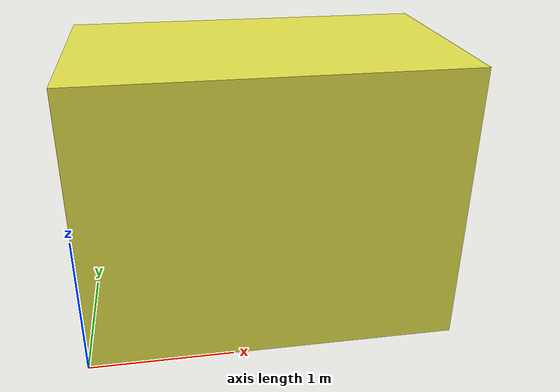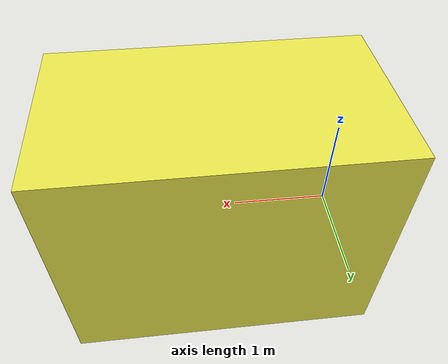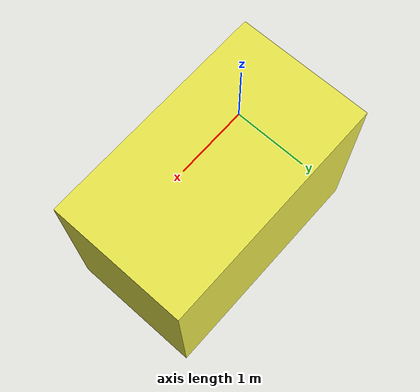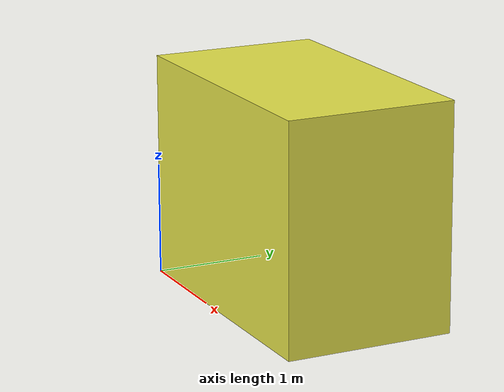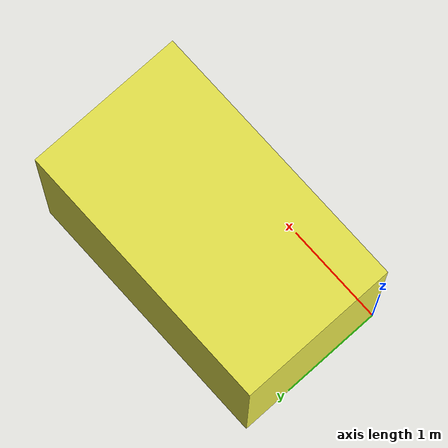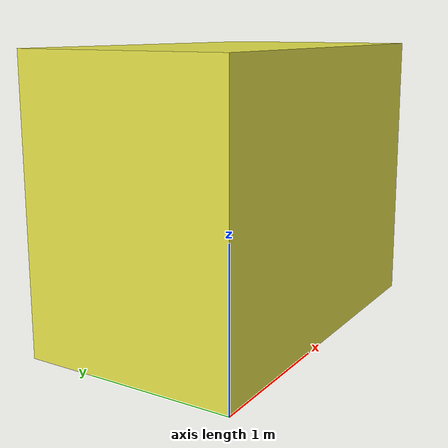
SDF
<?xml version="1.0" ?>
<sdf version="1.5">
  <model name="obstacle_09">
    <static>true</static>
    <link name="link">
      <pose>0 0 0 0 0 0</pose>
      <collision name="collision">
        <geometry>
            <mesh>
              <uri>
                model://obstacle_09/mesh/ostacolo_09.stl
              </uri>
              <scale>
                0.001 0.001 0.001
              </scale>
            </mesh>
        </geometry>
      </collision>
      <visual name="visual">
        <cast_shadows>true</cast_shadows>
        <geometry>
            <mesh>
              <uri>
                model://obstacle_09/mesh/ostacolo_09.stl
              </uri>
              <scale>
                0.001 0.001 0.001
              </scale>
            </mesh>
        </geometry>
        <material> <!-- color yellow -->
          <ambient>0.9098 0.9020 0.2941 1</ambient>
          <diffuse>0.9098 0.9020 0.2941 1</diffuse>
          <specular>0 0 0 0</specular>
          <emissive>0 0 0 1</emissive>
        </material>
      </visual>
    </link>
  </model>
</sdf>
